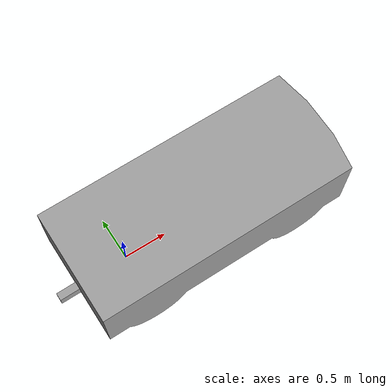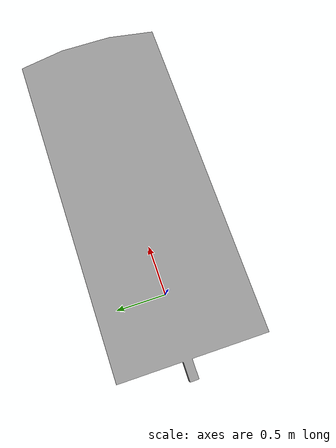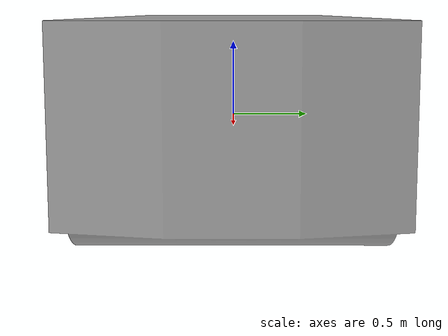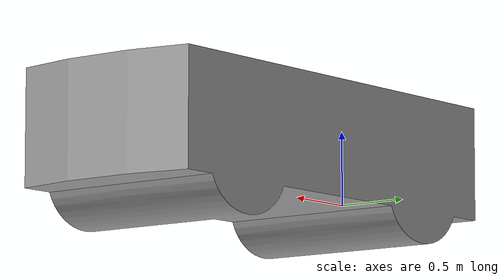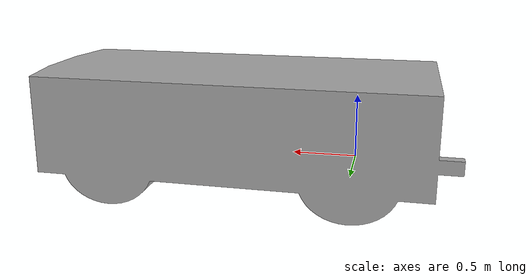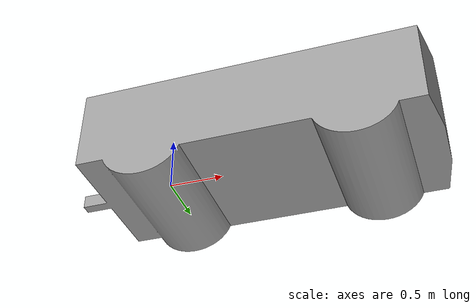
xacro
<?xml version="1.0"?>
<robot xmlns:xacro="http://ros.org/wiki/xacro">

  <!-- load parameter -->
  <xacro:property name="vehicle_info" value="${load_yaml('$(find golfcart_description)/config/vehicle_info.param.yaml')}"/>

  <!-- vehicle body -->
  <link name="base_link">
    <visual>
      <origin xyz="0 0 0" rpy="0 0 0"/>
      <geometry>
        <mesh filename="package://golfcart_description/mesh/golfcart.dae" scale="1.4325 1.2091 1.1978"/>
      </geometry>
    </visual>
  </link>

</robot>
